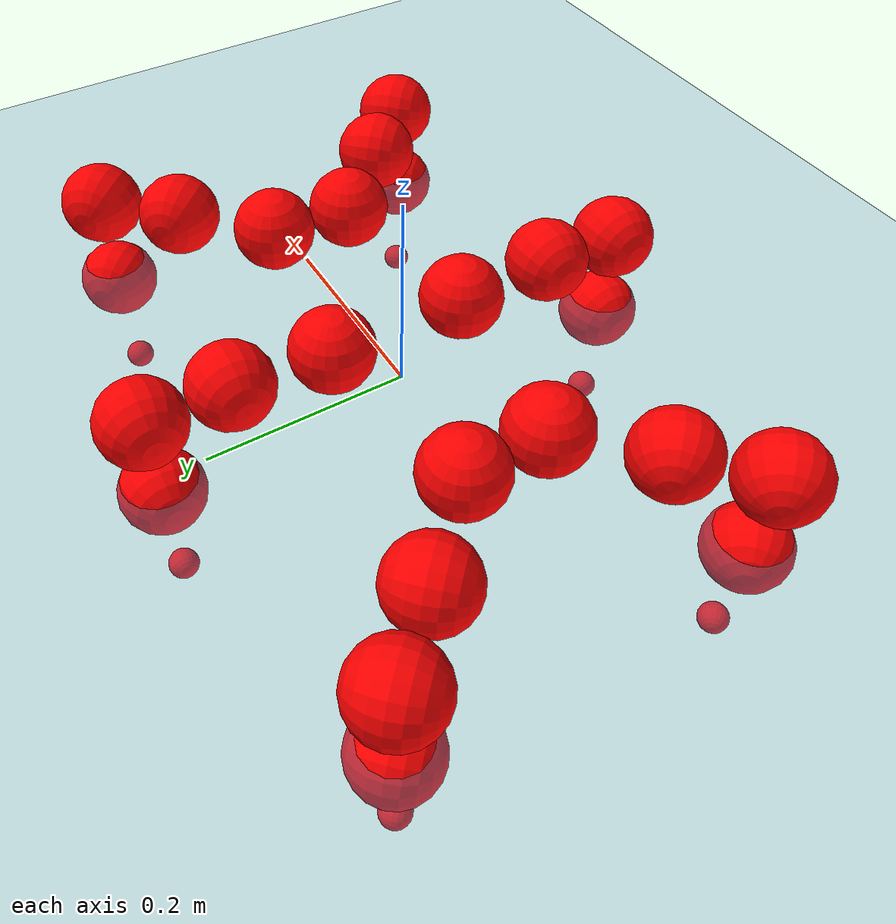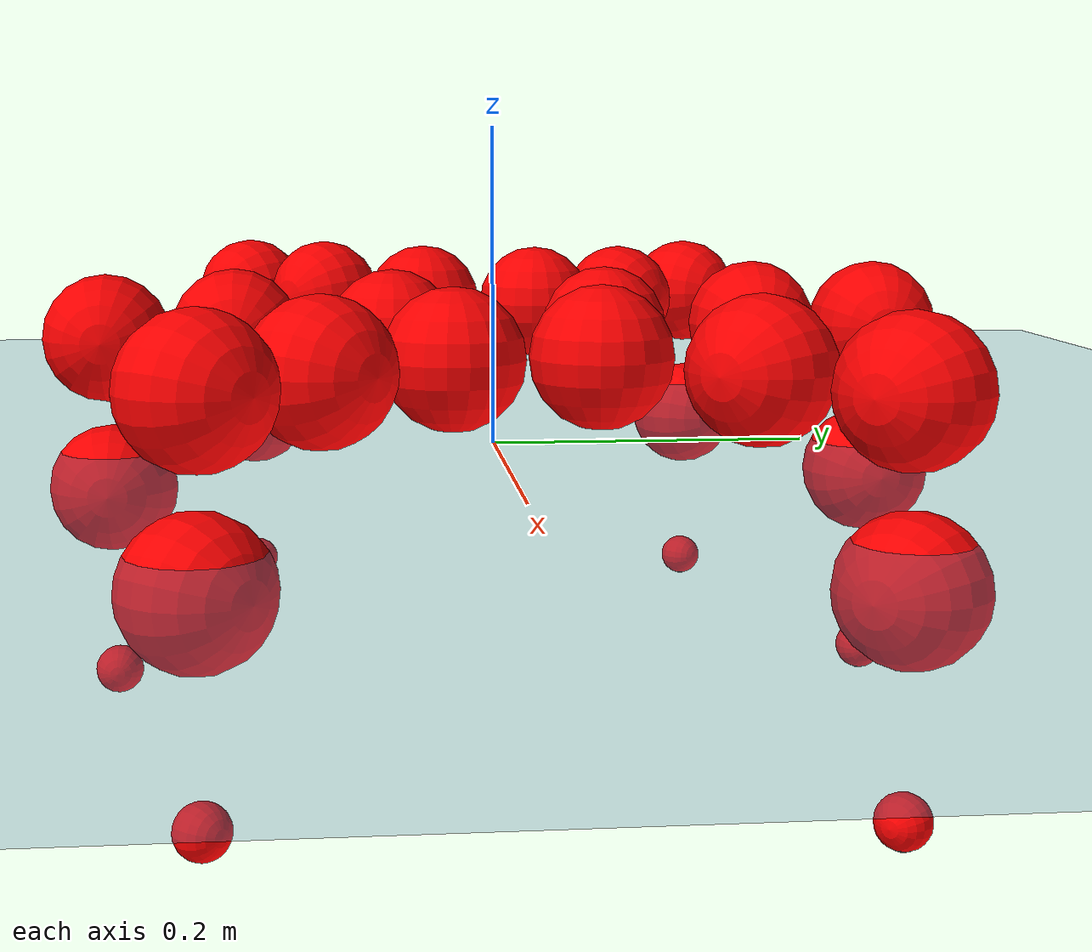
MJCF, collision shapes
<mujoco model="Golem">
  <compiler angle="radian" assetdir="assets" balanceinertia="true" inertiafromgeom="false"/>

  <option timestep="0.005" density="1.2" viscosity="2e-05"/>

  <size nkey="1"/>

  <visual>
    <quality shadowsize="8192"/>
    <map shadowclip="0.5"/>
  </visual>

  <default>
    <default class="/">
      <joint armature="0.01" damping="0.01" frictionloss="0.01"/>
      <geom contype="0" conaffinity="0" group="1" solref="-1000 -80"/>
      <site size="0.01 0.005 0.005" group="5"/>
      <general forcelimited="true" biastype="affine" gainprm="25" biasprm="0 -25 -0.5"/>
      <default class="visual">
        <geom type="mesh" group="2"/>
      </default>
      <default class="collision">
        <geom group="3"/>
      </default>
      <default class="foot">
        <geom size="0.01 0 0" condim="6" group="4" priority="1" solimp="0.015 1 0.01"/>
      </default>
      <default class="reward_collision_sphere">
        <geom group="5" rgba="1 0 0 1"/>
      </default>
    </default>
  </default>

  <asset>
    <texture type="skybox" colorspace="auto" name="//unnamed_texture_0" builtin="gradient" rgb1="0.95 0.95 0.95" rgb2="0.95 0.95 0.95" width="100" height="600"/>
    <texture type="2d" colorspace="auto" name="texplane" builtin="checker" rgb1="0.345 0.575 0.748" rgb2="0.345 0.575 0.748" markrgb="1 1 1" width="512" height="512"/>
    <material name="MatPlane" class="/" texture="texplane" texuniform="true" texrepeat="2 2" specular="0.9"/>
    <mesh name="body" class="/" file="body.stl" scale="0.001 0.001 0.001"/>
    <mesh name="coxa" class="/" file="coxa.stl" scale="0.001 0.001 0.001"/>
    <mesh name="femur" class="/" file="femur.stl" scale="0.001 0.001 0.001"/>
    <mesh name="tibia" class="/" file="tibia.stl" scale="0.001 0.001 0.001"/>
    <mesh name="tarsus" class="/" file="tarsus.stl" scale="0.001 0.001 0.001"/>
  </asset>

  <worldbody>
    <geom name="floor" class="/" size="100 100 0.125" type="plane" group="0" material="MatPlane"/>
    <light name="toplight_shadow" class="/" pos="0 0 5" dir="0.0990148 0.0990148 -0.990148" type="directional" ambient="0.04 0.04 0.04" diffuse="0.55 0.55 0.55" specular="0.12 0.12 0.12"/>
    <light name="toplight_fill" class="/" pos="0 0 5" dir="0.0990148 0.0990148 -0.990148" type="directional" castshadow="false" ambient="0.04 0.04 0.04" diffuse="0.3 0.3 0.3" specular="0.08 0.08 0.08"/>
    <body name="trunk" pos="0.000835014 0.00271531 0.00219035" quat="1 -0.000149187 -7.60422e-05 -0.000117427">
      <inertial pos="-0.000752058 0.000279242 -0.00423332" quat="0.999993 0.00339698 -0.0009848 -0.00150033" mass="3.85933" diaginertia="0.0159382 0.0026886 0.017207"/>
      <joint name="//unnamed_joint_0" type="free"/>
      <geom name="//unnamed_geom_1" class="/" pos="0 0 0.0712792" quat="1 0 0 0" type="mesh" rgba="0.9 0.9 0.9 1" mesh="body"/>
      <site name="imu" class="/" pos="0.147689 -0.0120797 0.116383" size="0.009912"/>
      <camera name="track" class="/" pos="0 -1.52692 0" quat="0.707107 0.707107 0 0" mode="trackcom"/>
      <camera name="ego_camera" class="/" pos="0.142532 0 0.111374" quat="-0.5 -0.5 0.5 0.5"/>
      <body name="coxa_RR" pos="-0.194334 -0.0612967 0.0742472" quat="0.383263 7.57612e-05 0.00113738 -0.923639">
        <inertial pos="-1.8438e-05 -0.00243262 0.00283835" quat="0.99996 0.0066809 -0.00382796 -0.00464452" mass="0.200296" diaginertia="0.0156388 0.00255353 0.0171506"/>
        <joint name="coxa_joint_RR" class="/" pos="0 0 0" axis="0.0031288 0.000489402 -0.999995" stiffness="0.00125112" range="-3.08462 3.13431" armature="0.0100517" damping="0.00409265" frictionloss="0.0104412"/>
        <geom name="//unnamed_geom_2" class="/" type="mesh" rgba="0.2 0.2 0.2 1" mesh="coxa"/>
        <geom name="//unnamed_geom_3" class="reward_collision_sphere" size="0.039648" pos="-0.032892 0 0"/>
        <body name="femur_RR" pos="0.0672995 0.000150953 -0.000213097" quat="0.500513 -0.499404 0.500725 0.499356">
          <inertial pos="-0.00281771 -0.000989082 0.000440339" quat="1 -0.000236033 0.00031061 -0.000306819" mass="0.199105" diaginertia="0.0162211 0.00267064 0.0176087"/>
          <joint name="femur_joint_RR" class="/" pos="0 0 0" axis="-0.000877588 -0.00246135 -0.999997" stiffness="0.00798609" range="-3.1889 3.18115" armature="0.0085673" damping="0.0011506" frictionloss="0.00984901"/>
          <geom name="//unnamed_geom_4" class="/" type="mesh" rgba="0.9 0.9 0.9 1" mesh="femur"/>
          <geom name="//unnamed_geom_5" class="reward_collision_sphere" size="0.039648"/>
          <body name="tibia_RR" pos="0.00167737 -0.0819006 -0.000799045" quat="5.52502e-05 1 0.00023924 1.28071e-05">
            <inertial pos="0.00152411 0.000871007 -0.000565416" quat="0.999952 -0.00363538 -0.00913289 0.000530026" mass="0.19246" diaginertia="0.0161259 0.00274478 0.0180408"/>
            <joint name="tibia_joint_RR" class="/" pos="0 0 0" axis="0.0126732 0.00468346 0.999909" range="-3.17059 3.09788" armature="0.0104188" damping="0.0205476" frictionloss="0.00939248"/>
            <geom name="//unnamed_geom_6" class="/" type="mesh" rgba="0.2 0.2 0.2 1" mesh="tibia"/>
            <geom name="//unnamed_geom_7" class="reward_collision_sphere" size="0.039648"/>
            <body name="tarsus_RR" pos="0.0961684 -0.00219925 -0.000502974" quat="1 0.000260326 0.000402678 -0.000194596">
              <inertial pos="0.0697778 0.00244613 -0.00284605" quat="0.500327 0.498843 0.494896 0.505872" mass="0.203892" diaginertia="0.0159153 0.00277298 0.0176481"/>
              <joint name="tarsus_joint_RR" class="/" pos="0 0 0" axis="-0.00296539 0.00267167 0.999992" range="-3.08867 3.14283" armature="0.0101721" damping="0.0442406" frictionloss="0.0108009"/>
              <geom name="//unnamed_geom_8" class="/" type="mesh" rgba="0.9 0.9 0.9 1" mesh="tarsus"/>
              <geom name="foot_1" class="foot" size="0.0102302" pos="0.122797 0 0" quat="0 -0.707107 0 0.707107"/>
              <geom name="//unnamed_geom_10" class="reward_collision_sphere" size="0.039648"/>
              <geom name="//unnamed_geom_11" class="reward_collision_sphere" size="0.014868" pos="0.117863 0 0"/>
              <site name="foot_1" class="foot" pos="0.122797 0 0" quat="0 -0.707107 0 0.707107" size="0.009912"/>
            </body>
          </body>
        </body>
      </body>
      <body name="coxa_RM" pos="0.00140079 -0.0996447 0.0696563" quat="0.707089 2.44524e-05 -0.000146724 -0.707124">
        <inertial pos="0.00089503 0.00173528 0.00037615" quat="1 0.0001806 -0.000509259 -0.000204331" mass="0.188088" diaginertia="0.0157722 0.00258556 0.0170375"/>
        <joint name="coxa_joint_RM" class="/" pos="0 0 0" axis="-0.00149484 -0.00291876 -0.999995" range="-3.1249 3.13995" armature="0.0097736" damping="0.0114659" frictionloss="0.00880685"/>
        <geom name="//unnamed_geom_12" class="/" type="mesh" rgba="0.2 0.2 0.2 1" mesh="coxa"/>
        <geom name="//unnamed_geom_13" class="reward_collision_sphere" size="0.039648" pos="-0.032892 0 0"/>
        <body name="femur_RM" pos="0.0648464 0.00177356 0.0010802" quat="0.499489 -0.50027 0.500187 0.500054">
          <inertial pos="-0.000581712 -0.00226752 0.0027393" quat="0.999997 0.00141449 0.00133174 0.00159795" mass="0.199019" diaginertia="0.0154962 0.00261411 0.0172968"/>
          <joint name="femur_joint_RM" class="/" pos="0 0 0" axis="-0.00218145 -0.00231933 -0.999995" range="-3.14855 3.10302" armature="0.0104375" damping="0" frictionloss="0.00992574"/>
          <geom name="//unnamed_geom_14" class="/" type="mesh" rgba="0.9 0.9 0.9 1" mesh="femur"/>
          <geom name="//unnamed_geom_15" class="reward_collision_sphere" size="0.039648"/>
          <body name="tibia_RM" pos="0.00308026 -0.0789898 -0.00117231" quat="0.000208873 1 0.000122478 8.31901e-05">
            <inertial pos="-0.00246107 -0.002603 0.000570508" quat="0.999928 0.000290122 0.0104703 0.00587642" mass="0.19663" diaginertia="0.015878 0.00259893 0.0166473"/>
            <joint name="tibia_joint_RM" class="/" pos="0 0 0" axis="0.00160201 0.00340233 0.999993" range="-3.14614 3.17095" armature="0.0108103" damping="0.0233021" frictionloss="0.0109618"/>
            <geom name="//unnamed_geom_16" class="/" type="mesh" rgba="0.2 0.2 0.2 1" mesh="tibia"/>
            <geom name="//unnamed_geom_17" class="reward_collision_sphere" size="0.039648"/>
            <body name="tarsus_RM" pos="0.0939337 -0.0015042 0.000358055" quat="1 2.97605e-06 -0.000123566 -7.5842e-05">
              <inertial pos="0.0662859 -0.000896889 0.00113003" quat="0.4986 0.503948 0.499576 0.497854" mass="0.200428" diaginertia="0.0165239 0.00270612 0.0177345"/>
              <joint name="tarsus_joint_RM" class="/" pos="0 0 0" axis="-0.00120201 -0.00150578 0.999998" range="-3.13901 3.13485" armature="0.00843507" damping="0.00375268" frictionloss="0.00940152"/>
              <geom name="//unnamed_geom_18" class="/" type="mesh" rgba="0.9 0.9 0.9 1" mesh="tarsus"/>
              <geom name="foot_2" class="foot" size="0.00898172" pos="0.122797 0 0" quat="0 -0.707107 0 0.707107"/>
              <geom name="//unnamed_geom_20" class="reward_collision_sphere" size="0.039648"/>
              <geom name="//unnamed_geom_21" class="reward_collision_sphere" size="0.014868" pos="0.117863 0 0"/>
              <site name="foot_2" class="foot" pos="0.122797 0 0" quat="0 -0.707107 0 0.707107" size="0.009912"/>
            </body>
          </body>
        </body>
      </body>
      <body name="coxa_RF" pos="0.191969 -0.0628136 0.0719714" quat="0.923848 0.000258461 0.00013796 -0.38276">
        <inertial pos="0.00291465 -0.000389663 -0.000397271" quat="0.999986 0.00165399 0.000191799 -0.00510841" mass="0.193338" diaginertia="0.0163415 0.00256767 0.0165402"/>
        <joint name="coxa_joint_RF" class="/" pos="0 0 0" axis="0.00698878 0.00380119 -0.999968" range="-3.18454 3.16022" armature="0.00904436" damping="0.0122411" frictionloss="0.0103444"/>
        <geom name="//unnamed_geom_22" class="/" type="mesh" rgba="0.2 0.2 0.2 1" mesh="coxa"/>
        <geom name="//unnamed_geom_23" class="reward_collision_sphere" size="0.039648" pos="-0.032892 0 0"/>
        <body name="femur_RF" pos="0.0666206 -0.00131844 0.00259914" quat="0.500536 -0.500229 0.49998 0.499255">
          <inertial pos="0.0010324 0.00078531 -0.00262235" quat="1 -0.000324104 0.000346218 0.000221081" mass="0.19101" diaginertia="0.0158065 0.00270182 0.0171966"/>
          <joint name="femur_joint_RF" class="/" pos="0 0 0" axis="0.00144271 -8.80716e-06 -0.999999" range="-3.08443 3.12873" armature="0.0111852" damping="0" frictionloss="0.0102321"/>
          <geom name="//unnamed_geom_24" class="/" type="mesh" rgba="0.9 0.9 0.9 1" mesh="femur"/>
          <geom name="//unnamed_geom_25" class="reward_collision_sphere" size="0.039648"/>
          <body name="tibia_RF" pos="0.000735421 -0.0822541 0.000734418" quat="-3.8418e-05 1 -1.80469e-05 -1.65313e-06">
            <inertial pos="0.000431554 0.00262867 4.28379e-05" quat="1 3.79051e-05 0.000283081 0.000141397" mass="0.194997" diaginertia="0.016343 0.00253494 0.0177974"/>
            <joint name="tibia_joint_RF" class="/" pos="0 0 0" axis="-0.00419153 0.00251203 0.999988" stiffness="4.278e-05" range="-3.15957 3.15299" armature="0.0104302" damping="0.00368304" frictionloss="0.00854021"/>
            <geom name="//unnamed_geom_26" class="/" type="mesh" rgba="0.2 0.2 0.2 1" mesh="tibia"/>
            <geom name="//unnamed_geom_27" class="reward_collision_sphere" size="0.039648"/>
            <body name="tarsus_RF" pos="0.0964218 0.00154104 0.000986421" quat="0.999999 9.88168e-05 0.000960887 0.000903188">
              <inertial pos="0.0638421 -0.00257708 0.000518081" quat="0.495146 0.505349 0.505633 0.493749" mass="0.189135" diaginertia="0.0164674 0.00253389 0.0171642"/>
              <joint name="tarsus_joint_RF" class="/" pos="0 0 0" axis="0.0131621 -0.00301292 0.999909" stiffness="0.00514633" range="-3.08879 3.15834" armature="0.0108172" damping="0.00137772" frictionloss="0.00985871"/>
              <geom name="//unnamed_geom_28" class="/" type="mesh" rgba="0.9 0.9 0.9 1" mesh="tarsus"/>
              <geom name="foot_3" class="foot" size="0.00974856" pos="0.122797 0 0" quat="0 -0.707107 0 0.707107"/>
              <geom name="//unnamed_geom_30" class="reward_collision_sphere" size="0.039648"/>
              <geom name="//unnamed_geom_31" class="reward_collision_sphere" size="0.014868" pos="0.117863 0 0"/>
              <site name="foot_3" class="foot" pos="0.122797 0 0" quat="0 -0.707107 0 0.707107" size="0.009912"/>
            </body>
          </body>
        </body>
      </body>
      <body name="coxa_LR" pos="-0.19569 0.0661803 0.0729022" quat="0.382588 0.000104163 0.000521833 0.923919">
        <inertial pos="0.000102141 -0.00264921 0.000805138" quat="0.999905 0.000795619 -0.00533836 -0.0127154" mass="0.188418" diaginertia="0.0151542 0.00259598 0.0166598"/>
        <joint name="coxa_joint_LR" class="/" pos="0 0 0" axis="0.00653383 0.00972812 -0.999931" range="-3.16589 3.18948" armature="0.00858604" damping="0.00698521" frictionloss="0.0104349"/>
        <geom name="//unnamed_geom_32" class="/" type="mesh" rgba="0.2 0.2 0.2 1" mesh="coxa"/>
        <geom name="//unnamed_geom_33" class="reward_collision_sphere" size="0.039648" pos="-0.032892 0 0"/>
        <body name="femur_LR" pos="0.0681756 -0.00178934 -0.00363446" quat="0.499182 -0.500442 0.499515 0.500859">
          <inertial pos="0.000421314 9.06749e-05 -0.000857061" quat="0.999918 -0.00385056 -0.00649887 0.0103738" mass="0.191968" diaginertia="0.0159515 0.00263273 0.0178252"/>
          <joint name="femur_joint_LR" class="/" pos="0 0 0" axis="-0.00547508 0.00785662 0.999954" range="-3.09482 3.0835" armature="0.0108611" damping="0" frictionloss="0.0104283"/>
          <geom name="//unnamed_geom_34" class="/" type="mesh" rgba="0.9 0.9 0.9 1" mesh="femur"/>
          <geom name="//unnamed_geom_35" class="reward_collision_sphere" size="0.039648"/>
          <body name="tibia_LR" pos="-0.000677122 -0.0843547 -0.00336364" quat="-0.000494436 1 -0.000803935 -0.000134615">
            <inertial pos="0.00123125 -0.00212993 0.00270459" quat="0.999941 -0.00722421 0.00313359 -0.00743002" mass="0.195762" diaginertia="0.0163947 0.00264819 0.0171397"/>
            <joint name="tibia_joint_LR" class="/" pos="0 0 0" axis="0.00111287 0.00267963 -0.999996" stiffness="0.000148761" range="-3.19578 3.17862" armature="0.0089479" damping="0.000564738" frictionloss="0.0110507"/>
            <geom name="//unnamed_geom_36" class="/" type="mesh" rgba="0.2 0.2 0.2 1" mesh="tibia"/>
            <geom name="//unnamed_geom_37" class="reward_collision_sphere" size="0.039648"/>
            <body name="tarsus_LR" pos="0.0988873 0.000590351 0.00108655" quat="0.999999 -0.000313934 -0.000595331 -0.0012003">
              <inertial pos="0.0693002 0.000973591 0.000134788" quat="0.49197 0.49687 0.503302 0.507714" mass="0.201647" diaginertia="0.0160346 0.00264873 0.0174127"/>
              <joint name="tarsus_joint_LR" class="/" pos="0 0 0" axis="-0.00732413 0.000420395 -0.999973" range="-3.19483 3.14755" armature="0.00996249" damping="0.0268499" frictionloss="0.00855957"/>
              <geom name="//unnamed_geom_38" class="/" type="mesh" rgba="0.9 0.9 0.9 1" mesh="tarsus"/>
              <geom name="foot_4" class="foot" size="0.0101674" pos="0.122797 0 0" quat="0.707107 0 -0.707107 0"/>
              <geom name="//unnamed_geom_40" class="reward_collision_sphere" size="0.039648"/>
              <geom name="//unnamed_geom_41" class="reward_collision_sphere" size="0.014868" pos="0.117863 0 0"/>
              <site name="foot_4" class="foot" pos="0.122797 0 0" quat="0.707107 0 -0.707107 0" size="0.009912"/>
            </body>
          </body>
        </body>
      </body>
      <body name="coxa_LM" pos="-0.000580814 0.100929 0.0703842" quat="0.707161 -0.000414869 -0.000677227 0.707052">
        <inertial pos="-0.00236129 -5.38579e-05 -0.00246498" quat="1 5.54411e-05 0.000165798 -7.07083e-05" mass="0.190032" diaginertia="0.0151131 0.00248277 0.0175038"/>
        <joint name="coxa_joint_LM" class="/" pos="0 0 0" axis="-0.000934476 -0.00498696 -0.999987" range="-3.13665 3.14461" armature="0.0112182" damping="0.00280431" frictionloss="0.00872482"/>
        <geom name="//unnamed_geom_42" class="/" type="mesh" rgba="0.2 0.2 0.2 1" mesh="coxa"/>
        <geom name="//unnamed_geom_43" class="reward_collision_sphere" size="0.039648" pos="-0.032892 0 0"/>
        <body name="femur_LM" pos="0.0614606 -0.00238806 0.00312248" quat="0.500035 -0.499447 0.500037 0.500481">
          <inertial pos="0.00291089 0.00142037 0.00261864" quat="0.999997 -0.000250748 0.00213186 0.00144748" mass="0.195267" diaginertia="0.0161291 0.00260162 0.0169566"/>
          <joint name="femur_joint_LM" class="/" pos="0 0 0" axis="-4.12673e-06 -6.13967e-05 1" range="-3.16158 3.08422" armature="0.0106431" damping="0" frictionloss="0.0111496"/>
          <geom name="//unnamed_geom_44" class="/" type="mesh" rgba="0.9 0.9 0.9 1" mesh="femur"/>
          <geom name="//unnamed_geom_45" class="reward_collision_sphere" size="0.039648"/>
          <body name="tibia_LM" pos="0.000585123 -0.0792755 0.00100423" quat="-0.000281111 1 0.000335138 -2.31553e-06">
            <inertial pos="-0.00186188 -0.00252257 0.00231671" quat="0.999939 0.00336581 0.00270531 -0.0101619" mass="0.190916" diaginertia="0.0158148 0.0025641 0.0165426"/>
            <joint name="tibia_joint_LM" class="/" pos="0 0 0" axis="-0.0128617 -0.0011879 -0.999917" range="-3.14549 3.08428" armature="0.010118" damping="0" frictionloss="0.0098887"/>
            <geom name="//unnamed_geom_46" class="/" type="mesh" rgba="0.2 0.2 0.2 1" mesh="tibia"/>
            <geom name="//unnamed_geom_47" class="reward_collision_sphere" size="0.039648"/>
            <body name="tarsus_LM" pos="0.0949291 -0.0021494 0.00223204" quat="1 0.000170081 6.05387e-05 8.81214e-05">
              <inertial pos="0.0635564 0.000810163 -0.00281177" quat="0.50345 0.507445 0.498233 0.490715" mass="0.198972" diaginertia="0.0158514 0.00247178 0.0163642"/>
              <joint name="tarsus_joint_LM" class="/" pos="0 0 0" axis="-0.00345055 -0.0119096 -0.999923" range="-3.13303 3.08352" armature="0.00941588" damping="0.0114216" frictionloss="0.00992522"/>
              <geom name="//unnamed_geom_48" class="/" type="mesh" rgba="0.9 0.9 0.9 1" mesh="tarsus"/>
              <geom name="foot_5" class="foot" size="0.0102303" pos="0.122797 0 0" quat="0.707107 0 -0.707107 0"/>
              <geom name="//unnamed_geom_50" class="reward_collision_sphere" size="0.039648"/>
              <geom name="//unnamed_geom_51" class="reward_collision_sphere" size="0.014868" pos="0.117863 0 0"/>
              <site name="foot_5" class="foot" pos="0.122797 0 0" quat="0.707107 0 -0.707107 0" size="0.009912"/>
            </body>
          </body>
        </body>
      </body>
      <body name="coxa_LF" pos="0.196592 0.0638558 0.0728576" quat="0.923613 2.33177e-05 0.00106772 0.383325">
        <inertial pos="0.00016374 0.000602682 0.000952774" quat="0.999938 0.00453846 0.00821217 -0.00595802" mass="0.198275" diaginertia="0.0153513 0.00264425 0.0164126"/>
        <joint name="coxa_joint_LF" class="/" pos="0 0 0" axis="0.00847857 0.0043592 -0.999955" range="-3.13901 3.13653" armature="0.00956073" damping="0.00565422" frictionloss="0.00943083"/>
        <geom name="//unnamed_geom_52" class="/" type="mesh" rgba="0.2 0.2 0.2 1" mesh="coxa"/>
        <geom name="//unnamed_geom_53" class="reward_collision_sphere" size="0.039648" pos="-0.032892 0 0"/>
        <body name="femur_LF" pos="0.0664714 0.00228402 0.000803441" quat="0.499708 -0.50034 0.500208 0.499743">
          <inertial pos="0.00278905 -0.000685235 0.00252472" quat="0.999997 -0.000187866 -1.3307e-05 0.00228415" mass="0.189938" diaginertia="0.0152738 0.00259139 0.0165883"/>
          <joint name="femur_joint_LF" class="/" pos="0 0 0" axis="0.00259421 -0.00849885 0.999961" range="-3.14062 3.18215" armature="0.0113091" damping="0.00309986" frictionloss="0.00981092"/>
          <geom name="//unnamed_geom_54" class="/" type="mesh" rgba="0.9 0.9 0.9 1" mesh="femur"/>
          <geom name="//unnamed_geom_55" class="reward_collision_sphere" size="0.039648"/>
          <body name="tibia_LF" pos="0.00299165 -0.0853183 -0.00100172" quat="0.000907809 0.999999 0.000848583 -0.000322097">
            <inertial pos="0.000767445 -0.000101567 0.000212976" quat="0.999997 0.000415145 -0.0010944 0.00221329" mass="0.194784" diaginertia="0.0158647 0.00259912 0.0170734"/>
            <joint name="tibia_joint_LF" class="/" pos="0 0 0" axis="-0.00377957 -0.0115982 -0.999926" range="-3.15541 3.18991" armature="0.00857523" damping="0.00914986" frictionloss="0.00995786"/>
            <geom name="//unnamed_geom_56" class="/" type="mesh" rgba="0.2 0.2 0.2 1" mesh="tibia"/>
            <geom name="//unnamed_geom_57" class="reward_collision_sphere" size="0.039648"/>
            <body name="tarsus_LF" pos="0.0981669 0.001835 -0.00214456" quat="1 -0.000139888 0.000266979 0.000421468">
              <inertial pos="0.0634656 0.00122278 -0.000902167" quat="0.500165 0.500533 0.49944 0.499862" mass="0.190192" diaginertia="0.0156877 0.002556 0.0173708"/>
              <joint name="tarsus_joint_LF" class="/" pos="0 0 0" axis="0.00262622 0.0101531 -0.999945" stiffness="0.0248155" range="-3.1921 3.19015" armature="0.00999146" damping="0" frictionloss="0.0101156"/>
              <geom name="//unnamed_geom_58" class="/" type="mesh" rgba="0.9 0.9 0.9 1" mesh="tarsus"/>
              <geom name="foot_6" class="foot" size="0.0104386" pos="0.122797 0 0" quat="0.707107 0 -0.707107 0"/>
              <geom name="//unnamed_geom_60" class="reward_collision_sphere" size="0.039648"/>
              <geom name="//unnamed_geom_61" class="reward_collision_sphere" size="0.014868" pos="0.117863 0 0"/>
              <site name="foot_6" class="foot" pos="0.122797 0 0" quat="0.707107 0 -0.707107 0" size="0.009912"/>
            </body>
          </body>
        </body>
      </body>
    </body>
  </worldbody>

  <contact>
    <pair class="/" geom1="floor" geom2="foot_1" name="//unnamed_contact_0"/>
    <pair class="/" geom1="floor" geom2="foot_2" name="//unnamed_contact_1"/>
    <pair class="/" geom1="floor" geom2="foot_3" name="//unnamed_contact_2"/>
    <pair class="/" geom1="floor" geom2="foot_4" name="//unnamed_contact_3"/>
    <pair class="/" geom1="floor" geom2="foot_5" name="//unnamed_contact_4"/>
    <pair class="/" geom1="floor" geom2="foot_6" name="//unnamed_contact_5"/>
  </contact>

  <actuator>
    <general name="coxa_joint_RR" class="/" joint="coxa_joint_RR" forcerange="-7.53025 7.53025" gainprm="23.839" biasprm="0 -23.839 -0.547533"/>
    <general name="femur_joint_RR" class="/" joint="femur_joint_RR" forcerange="-6.77324 6.77324" gainprm="23.839" biasprm="0 -23.839 -0.547533"/>
    <general name="tibia_joint_RR" class="/" joint="tibia_joint_RR" forcerange="-6.56458 6.56458" gainprm="23.839" biasprm="0 -23.839 -0.547533"/>
    <general name="tarsus_joint_RR" class="/" joint="tarsus_joint_RR" forcerange="-6.59145 6.59145" gainprm="23.839" biasprm="0 -23.839 -0.547533"/>
    <general name="coxa_joint_RM" class="/" joint="coxa_joint_RM" forcerange="-7.20659 7.20659" gainprm="23.839" biasprm="0 -23.839 -0.547533"/>
    <general name="femur_joint_RM" class="/" joint="femur_joint_RM" forcerange="-7.18081 7.18081" gainprm="23.839" biasprm="0 -23.839 -0.547533"/>
    <general name="tibia_joint_RM" class="/" joint="tibia_joint_RM" forcerange="-6.63516 6.63516" gainprm="23.839" biasprm="0 -23.839 -0.547533"/>
    <general name="tarsus_joint_RM" class="/" joint="tarsus_joint_RM" forcerange="-7.24608 7.24608" gainprm="23.839" biasprm="0 -23.839 -0.547533"/>
    <general name="coxa_joint_RF" class="/" joint="coxa_joint_RF" forcerange="-7.32842 7.32842" gainprm="23.839" biasprm="0 -23.839 -0.547533"/>
    <general name="femur_joint_RF" class="/" joint="femur_joint_RF" forcerange="-7.83544 7.83544" gainprm="23.839" biasprm="0 -23.839 -0.547533"/>
    <general name="tibia_joint_RF" class="/" joint="tibia_joint_RF" forcerange="-7.69812 7.69812" gainprm="23.839" biasprm="0 -23.839 -0.547533"/>
    <general name="tarsus_joint_RF" class="/" joint="tarsus_joint_RF" forcerange="-7.84304 7.84304" gainprm="23.839" biasprm="0 -23.839 -0.547533"/>
    <general name="coxa_joint_LR" class="/" joint="coxa_joint_LR" forcerange="-6.48205 6.48205" gainprm="23.839" biasprm="0 -23.839 -0.547533"/>
    <general name="femur_joint_LR" class="/" joint="femur_joint_LR" forcerange="-7.42933 7.42933" gainprm="23.839" biasprm="0 -23.839 -0.547533"/>
    <general name="tibia_joint_LR" class="/" joint="tibia_joint_LR" forcerange="-7.82295 7.82295" gainprm="23.839" biasprm="0 -23.839 -0.547533"/>
    <general name="tarsus_joint_LR" class="/" joint="tarsus_joint_LR" forcerange="-7.11766 7.11766" gainprm="23.839" biasprm="0 -23.839 -0.547533"/>
    <general name="coxa_joint_LM" class="/" joint="coxa_joint_LM" forcerange="-7.65136 7.65136" gainprm="23.839" biasprm="0 -23.839 -0.547533"/>
    <general name="femur_joint_LM" class="/" joint="femur_joint_LM" forcerange="-7.28084 7.28084" gainprm="23.839" biasprm="0 -23.839 -0.547533"/>
    <general name="tibia_joint_LM" class="/" joint="tibia_joint_LM" forcerange="-6.52577 6.52577" gainprm="23.839" biasprm="0 -23.839 -0.547533"/>
    <general name="tarsus_joint_LM" class="/" joint="tarsus_joint_LM" forcerange="-6.53191 6.53191" gainprm="23.839" biasprm="0 -23.839 -0.547533"/>
    <general name="coxa_joint_LF" class="/" joint="coxa_joint_LF" forcerange="-7.3627 7.3627" gainprm="23.839" biasprm="0 -23.839 -0.547533"/>
    <general name="femur_joint_LF" class="/" joint="femur_joint_LF" forcerange="-6.48234 6.48234" gainprm="23.839" biasprm="0 -23.839 -0.547533"/>
    <general name="tibia_joint_LF" class="/" joint="tibia_joint_LF" forcerange="-7.36484 7.36484" gainprm="23.839" biasprm="0 -23.839 -0.547533"/>
    <general name="tarsus_joint_LF" class="/" joint="tarsus_joint_LF" forcerange="-7.27738 7.27738" gainprm="23.839" biasprm="0 -23.839 -0.547533"/>
  </actuator>

  <sensor>
    <gyro site="imu" name="imu_angular_velocity"/>
    <velocimeter site="imu" name="imu_linear_velocity"/>
    <framelinvel objtype="site" objname="foot_1" name="foot_1_global_linear_velocity"/>
    <framelinvel objtype="site" objname="foot_2" name="foot_2_global_linear_velocity"/>
    <framelinvel objtype="site" objname="foot_3" name="foot_3_global_linear_velocity"/>
    <framelinvel objtype="site" objname="foot_4" name="foot_4_global_linear_velocity"/>
    <framelinvel objtype="site" objname="foot_5" name="foot_5_global_linear_velocity"/>
    <framelinvel objtype="site" objname="foot_6" name="foot_6_global_linear_velocity"/>
  </sensor>

  <keyframe>
    <key name="home" qpos="0 0 0.1457 1 0 0 0 0 0 0 0 0 0 0 0 0 0 0 0 0 0 0 0 0 0 0 0 0 0 0 0"/>
  </keyframe>
</mujoco>
